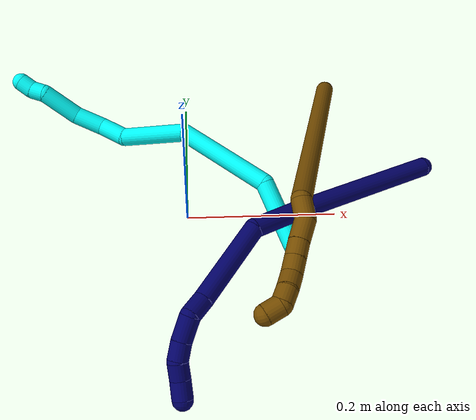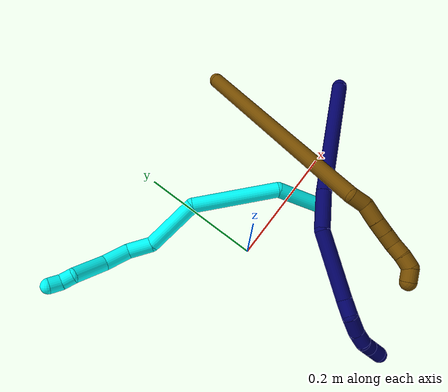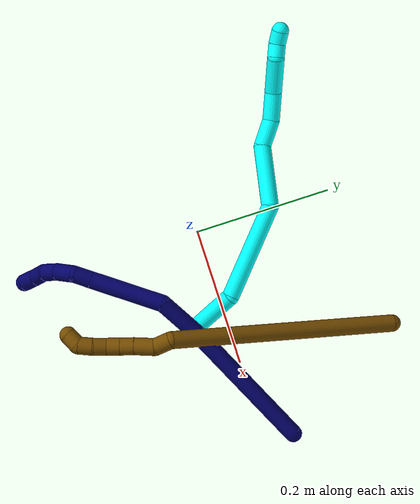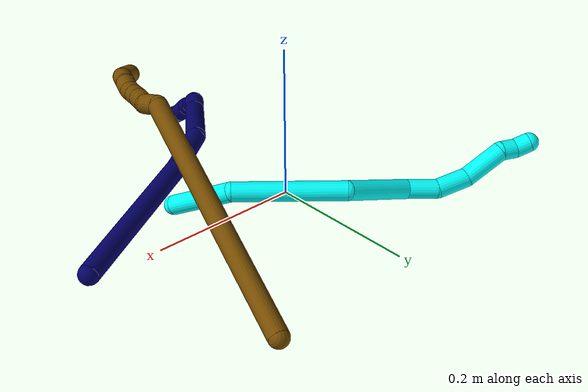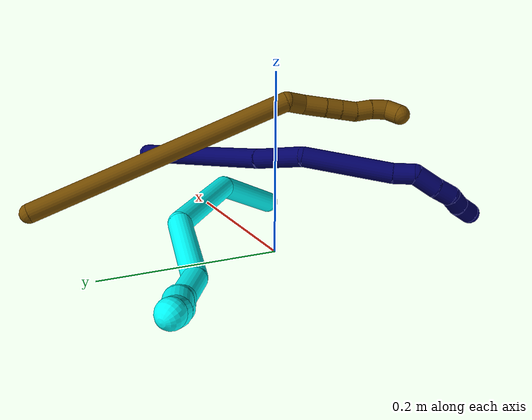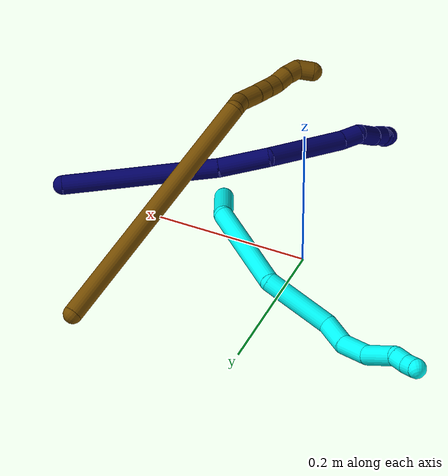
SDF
<sdf version="1.7">
 <world name="default">
  <model name="3">
   <static>0</static>
   <link name="3">
    <collision name="collision-cylinder-e_1_1_4">
     <pose>-0.023869 0.014886 0.035081 -0.401315 -0.559553 0.116743</pose>
     <geometry><cylinder><radius>0.0125</radius><length>0.089933</length></cylinder></geometry>
     <surface>
      <friction><ode><mu>1.16</mu><mu2>1.16</mu2><slip1>0</slip1><slip2>0</slip2></ode></friction>
      <contact><ode><kp>1e+06</kp><kd>1</kd><max_vel>0</max_vel><min_depth>0.001</min_depth></ode></contact>
     </surface>
    </collision>
    <visual name="visual-cylinder-e_1_1_4">
     <pose>-0.023869 0.014886 0.035081 -0.401315 -0.559553 0.116743</pose>
     <geometry><cylinder><radius>0.0125</radius><length>0.089933</length></cylinder></geometry>
     <material><ambient>0.003922 1 0.996078 1</ambient></material>
    </visual>
    <collision name="collision-cylinder-e_2_4_5">
     <pose>-0.045337 0.051651 0.137304 -0.314996 0.033983 -0.005397</pose>
     <geometry><cylinder><radius>0.0125</radius><length>0.141315</length></cylinder></geometry>
     <surface>
      <friction><ode><mu>1.16</mu><mu2>1.16</mu2><slip1>0</slip1><slip2>0</slip2></ode></friction>
      <contact><ode><kp>1e+06</kp><kd>1</kd><max_vel>0</max_vel><min_depth>0.001</min_depth></ode></contact>
     </surface>
    </collision>
    <visual name="visual-cylinder-e_2_4_5">
     <pose>-0.045337 0.051651 0.137304 -0.314996 0.033983 -0.005397</pose>
     <geometry><cylinder><radius>0.0125</radius><length>0.141315</length></cylinder></geometry>
     <material><ambient>0.003922 1 0.996078 1</ambient></material>
    </visual>
    <collision name="collision-cylinder-e_3_5_6">
     <pose>-0.01648 0.090036 0.238063 -0.456447 0.615018 -0.147264</pose>
     <geometry><cylinder><radius>0.0125</radius><length>0.091706</length></cylinder></geometry>
     <surface>
      <friction><ode><mu>1.16</mu><mu2>1.16</mu2><slip1>0</slip1><slip2>0</slip2></ode></friction>
      <contact><ode><kp>1e+06</kp><kd>1</kd><max_vel>0</max_vel><min_depth>0.001</min_depth></ode></contact>
     </surface>
    </collision>
    <visual name="visual-cylinder-e_3_5_6">
     <pose>-0.01648 0.090036 0.238063 -0.456447 0.615018 -0.147264</pose>
     <geometry><cylinder><radius>0.0125</radius><length>0.091706</length></cylinder></geometry>
     <material><ambient>0.003922 1 0.996078 1</ambient></material>
    </visual>
    <collision name="collision-cylinder-e_4_6_7">
     <pose>0.012734 0.112885 0.290425 -0.326285 0.13847 -0.022828</pose>
     <geometry><cylinder><radius>0.0125</radius><length>0.039959</length></cylinder></geometry>
     <surface>
      <friction><ode><mu>1.16</mu><mu2>1.16</mu2><slip1>0</slip1><slip2>0</slip2></ode></friction>
      <contact><ode><kp>1e+06</kp><kd>1</kd><max_vel>0</max_vel><min_depth>0.001</min_depth></ode></contact>
     </surface>
    </collision>
    <visual name="visual-cylinder-e_4_6_7">
     <pose>0.012734 0.112885 0.290425 -0.326285 0.13847 -0.022828</pose>
     <geometry><cylinder><radius>0.0125</radius><length>0.039959</length></cylinder></geometry>
     <material><ambient>0.003922 1 0.996078 1</ambient></material>
    </visual>
    <collision name="collision-cylinder-e_5_7_8">
     <pose>0.018486 0.132598 0.32508 -0.698813 0.143116 -0.052223</pose>
     <geometry><cylinder><radius>0.0125</radius><length>0.041994</length></cylinder></geometry>
     <surface>
      <friction><ode><mu>1.16</mu><mu2>1.16</mu2><slip1>0</slip1><slip2>0</slip2></ode></friction>
      <contact><ode><kp>1e+06</kp><kd>1</kd><max_vel>0</max_vel><min_depth>0.001</min_depth></ode></contact>
     </surface>
    </collision>
    <visual name="visual-cylinder-e_5_7_8">
     <pose>0.018486 0.132598 0.32508 -0.698813 0.143116 -0.052223</pose>
     <geometry><cylinder><radius>0.0125</radius><length>0.041994</length></cylinder></geometry>
     <material><ambient>0.003922 1 0.996078 1</ambient></material>
    </visual>
    <collision name="collision-cylinder-e_6_8_9">
     <pose>0.018813 0.168143 0.357046 -0.944161 -0.097126 0.04962</pose>
     <geometry><cylinder><radius>0.0125</radius><length>0.055015</length></cylinder></geometry>
     <surface>
      <friction><ode><mu>1.16</mu><mu2>1.16</mu2><slip1>0</slip1><slip2>0</slip2></ode></friction>
      <contact><ode><kp>1e+06</kp><kd>1</kd><max_vel>0</max_vel><min_depth>0.001</min_depth></ode></contact>
     </surface>
    </collision>
    <visual name="visual-cylinder-e_6_8_9">
     <pose>0.018813 0.168143 0.357046 -0.944161 -0.097126 0.04962</pose>
     <geometry><cylinder><radius>0.0125</radius><length>0.055015</length></cylinder></geometry>
     <material><ambient>0.003922 1 0.996078 1</ambient></material>
    </visual>
    <collision name="collision-cylinder-e_7_9_10">
     <pose>0.018863 0.195258 0.3814 -0.536832 0.274251 -0.075874</pose>
     <geometry><cylinder><radius>0.0125</radius><length>0.020065</length></cylinder></geometry>
     <surface>
      <friction><ode><mu>1.16</mu><mu2>1.16</mu2><slip1>0</slip1><slip2>0</slip2></ode></friction>
      <contact><ode><kp>1e+06</kp><kd>1</kd><max_vel>0</max_vel><min_depth>0.001</min_depth></ode></contact>
     </surface>
    </collision>
    <visual name="visual-cylinder-e_7_9_10">
     <pose>0.018863 0.195258 0.3814 -0.536832 0.274251 -0.075874</pose>
     <geometry><cylinder><radius>0.0125</radius><length>0.020065</length></cylinder></geometry>
     <material><ambient>0.003922 1 0.996078 1</ambient></material>
    </visual>
    <collision name="collision-cylinder-e_8_10_2">
     <pose>0.020899 0.206592 0.397366 -0.695145 -0.068127 0.024689</pose>
     <geometry><cylinder><radius>0.0125</radius><length>0.020013</length></cylinder></geometry>
     <surface>
      <friction><ode><mu>1.16</mu><mu2>1.16</mu2><slip1>0</slip1><slip2>0</slip2></ode></friction>
      <contact><ode><kp>1e+06</kp><kd>1</kd><max_vel>0</max_vel><min_depth>0.001</min_depth></ode></contact>
     </surface>
    </collision>
    <visual name="visual-cylinder-e_8_10_2">
     <pose>0.020899 0.206592 0.397366 -0.695145 -0.068127 0.024689</pose>
     <geometry><cylinder><radius>0.0125</radius><length>0.020013</length></cylinder></geometry>
     <material><ambient>0.003922 1 0.996078 1</ambient></material>
    </visual>
    <collision name="collision-sphere-2">
     <pose>0.020218 0.212986 0.405033 0 -0 0</pose>
     <geometry><sphere><radius>0.0125</radius></sphere></geometry>
     <surface>
      <friction><ode><mu>1.16</mu><mu2>1.16</mu2><slip1>0</slip1><slip2>0</slip2></ode></friction>
      <contact><ode><kp>1e+06</kp><kd>1</kd><max_vel>0</max_vel><min_depth>0.001</min_depth></ode></contact>
     </surface>
    </collision>
    <visual name="visual-sphere-2">
     <pose>0.020218 0.212986 0.405033 0 -0 0</pose>
     <geometry><sphere><radius>0.0125</radius></sphere></geometry>
     <material><ambient>0.003922 1 0.996078 1</ambient></material>
    </visual>
    <collision name="collision-sphere-10">
     <pose>0.02158 0.200197 0.389699 0 -0 0</pose>
     <geometry><sphere><radius>0.0125</radius></sphere></geometry>
     <surface>
      <friction><ode><mu>1.16</mu><mu2>1.16</mu2><slip1>0</slip1><slip2>0</slip2></ode></friction>
      <contact><ode><kp>1e+06</kp><kd>1</kd><max_vel>0</max_vel><min_depth>0.001</min_depth></ode></contact>
     </surface>
    </collision>
    <visual name="visual-sphere-10">
     <pose>0.02158 0.200197 0.389699 0 -0 0</pose>
     <geometry><sphere><radius>0.0125</radius></sphere></geometry>
     <material><ambient>0.003922 1 0.996078 1</ambient></material>
    </visual>
    <collision name="collision-sphere-9">
     <pose>0.016146 0.190319 0.373101 0 -0 0</pose>
     <geometry><sphere><radius>0.0125</radius></sphere></geometry>
     <surface>
      <friction><ode><mu>1.16</mu><mu2>1.16</mu2><slip1>0</slip1><slip2>0</slip2></ode></friction>
      <contact><ode><kp>1e+06</kp><kd>1</kd><max_vel>0</max_vel><min_depth>0.001</min_depth></ode></contact>
     </surface>
    </collision>
    <visual name="visual-sphere-9">
     <pose>0.016146 0.190319 0.373101 0 -0 0</pose>
     <geometry><sphere><radius>0.0125</radius></sphere></geometry>
     <material><ambient>0.003922 1 0.996078 1</ambient></material>
    </visual>
    <collision name="collision-sphere-4">
     <pose>-0.047737 0.029773 0.070162 0 -0 0</pose>
     <geometry><sphere><radius>0.0125</radius></sphere></geometry>
     <surface>
      <friction><ode><mu>1.16</mu><mu2>1.16</mu2><slip1>0</slip1><slip2>0</slip2></ode></friction>
      <contact><ode><kp>1e+06</kp><kd>1</kd><max_vel>0</max_vel><min_depth>0.001</min_depth></ode></contact>
     </surface>
    </collision>
    <visual name="visual-sphere-4">
     <pose>-0.047737 0.029773 0.070162 0 -0 0</pose>
     <geometry><sphere><radius>0.0125</radius></sphere></geometry>
     <material><ambient>0.003922 1 0.996078 1</ambient></material>
    </visual>
    <collision name="collision-sphere-1">
     <geometry><sphere><radius>0.0125</radius></sphere></geometry>
     <surface>
      <friction><ode><mu>1.16</mu><mu2>1.16</mu2><slip1>0</slip1><slip2>0</slip2></ode></friction>
      <contact><ode><kp>1e+06</kp><kd>1</kd><max_vel>0</max_vel><min_depth>0.001</min_depth></ode></contact>
     </surface>
    </collision>
    <visual name="visual-sphere-1">
     <geometry><sphere><radius>0.0125</radius></sphere></geometry>
     <material><ambient>0.003922 1 0.996078 1</ambient></material>
    </visual>
    <collision name="collision-sphere-8">
     <pose>0.021481 0.145967 0.340991 0 -0 0</pose>
     <geometry><sphere><radius>0.0125</radius></sphere></geometry>
     <surface>
      <friction><ode><mu>1.16</mu><mu2>1.16</mu2><slip1>0</slip1><slip2>0</slip2></ode></friction>
      <contact><ode><kp>1e+06</kp><kd>1</kd><max_vel>0</max_vel><min_depth>0.001</min_depth></ode></contact>
     </surface>
    </collision>
    <visual name="visual-sphere-8">
     <pose>0.021481 0.145967 0.340991 0 -0 0</pose>
     <geometry><sphere><radius>0.0125</radius></sphere></geometry>
     <material><ambient>0.003922 1 0.996078 1</ambient></material>
    </visual>
    <collision name="collision-sphere-5">
     <pose>-0.042936 0.073529 0.204447 0 -0 0</pose>
     <geometry><sphere><radius>0.0125</radius></sphere></geometry>
     <surface>
      <friction><ode><mu>1.16</mu><mu2>1.16</mu2><slip1>0</slip1><slip2>0</slip2></ode></friction>
      <contact><ode><kp>1e+06</kp><kd>1</kd><max_vel>0</max_vel><min_depth>0.001</min_depth></ode></contact>
     </surface>
    </collision>
    <visual name="visual-sphere-5">
     <pose>-0.042936 0.073529 0.204447 0 -0 0</pose>
     <geometry><sphere><radius>0.0125</radius></sphere></geometry>
     <material><ambient>0.003922 1 0.996078 1</ambient></material>
    </visual>
    <collision name="collision-sphere-6">
     <pose>0.009976 0.106543 0.27168 0 -0 0</pose>
     <geometry><sphere><radius>0.0125</radius></sphere></geometry>
     <surface>
      <friction><ode><mu>1.16</mu><mu2>1.16</mu2><slip1>0</slip1><slip2>0</slip2></ode></friction>
      <contact><ode><kp>1e+06</kp><kd>1</kd><max_vel>0</max_vel><min_depth>0.001</min_depth></ode></contact>
     </surface>
    </collision>
    <visual name="visual-sphere-6">
     <pose>0.009976 0.106543 0.27168 0 -0 0</pose>
     <geometry><sphere><radius>0.0125</radius></sphere></geometry>
     <material><ambient>0.003922 1 0.996078 1</ambient></material>
    </visual>
    <collision name="collision-sphere-7">
     <pose>0.015491 0.119228 0.309169 0 -0 0</pose>
     <geometry><sphere><radius>0.0125</radius></sphere></geometry>
     <surface>
      <friction><ode><mu>1.16</mu><mu2>1.16</mu2><slip1>0</slip1><slip2>0</slip2></ode></friction>
      <contact><ode><kp>1e+06</kp><kd>1</kd><max_vel>0</max_vel><min_depth>0.001</min_depth></ode></contact>
     </surface>
    </collision>
    <visual name="visual-sphere-7">
     <pose>0.015491 0.119228 0.309169 0 -0 0</pose>
     <geometry><sphere><radius>0.0125</radius></sphere></geometry>
     <material><ambient>0.003922 1 0.996078 1</ambient></material>
    </visual>
    <inertial>
     <pose>-0.013896 0.088553 0.209789 0 -0 0</pose>
     <mass>0.5</mass>
     <inertia>
      <ixx>0.000381</ixx>
      <ixy>0</ixy>
      <ixz>0</ixz>
      <iyy>0.00039</iyy>
      <iyz>0</iyz>
      <izz>-0.000124</izz>
     </inertia>
    </inertial>
   </link>
   <pose>0.13642 -0.057565 0.011882 1.85374 0.71725 -2.34433</pose>
  </model>
  <model name="7">
   <static>0</static>
   <link name="7">
    <collision name="collision-cylinder-e_1_1_4">
     <pose>-0.083551 -0.04291 0.037313 0.855053 -0.973218 -0.473069</pose>
     <geometry><cylinder><radius>0.0125</radius><length>0.202132</length></cylinder></geometry>
     <surface>
      <friction><ode><mu>1.16</mu><mu2>1.16</mu2><slip1>0</slip1><slip2>0</slip2></ode></friction>
      <contact><ode><kp>1e+06</kp><kd>1</kd><max_vel>0</max_vel><min_depth>0.001</min_depth></ode></contact>
     </surface>
    </collision>
    <visual name="visual-cylinder-e_1_1_4">
     <pose>-0.083551 -0.04291 0.037313 0.855053 -0.973218 -0.473069</pose>
     <geometry><cylinder><radius>0.0125</radius><length>0.202132</length></cylinder></geometry>
     <material><ambient>0.003922 0 0.403922 1</ambient></material>
    </visual>
    <collision name="collision-cylinder-e_2_4_5">
     <pose>-0.195072 -0.096852 0.088223 0.681658 -1.01145 -0.387866</pose>
     <geometry><cylinder><radius>0.0125</radius><length>0.065996</length></cylinder></geometry>
     <surface>
      <friction><ode><mu>1.16</mu><mu2>1.16</mu2><slip1>0</slip1><slip2>0</slip2></ode></friction>
      <contact><ode><kp>1e+06</kp><kd>1</kd><max_vel>0</max_vel><min_depth>0.001</min_depth></ode></contact>
     </surface>
    </collision>
    <visual name="visual-cylinder-e_2_4_5">
     <pose>-0.195072 -0.096852 0.088223 0.681658 -1.01145 -0.387866</pose>
     <geometry><cylinder><radius>0.0125</radius><length>0.065996</length></cylinder></geometry>
     <material><ambient>0.003922 0 0.403922 1</ambient></material>
    </visual>
    <collision name="collision-cylinder-e_3_5_6">
     <pose>-0.251481 -0.123277 0.14569 0.337428 -0.548995 -0.09586</pose>
     <geometry><cylinder><radius>0.0125</radius><length>0.109004</length></cylinder></geometry>
     <surface>
      <friction><ode><mu>1.16</mu><mu2>1.16</mu2><slip1>0</slip1><slip2>0</slip2></ode></friction>
      <contact><ode><kp>1e+06</kp><kd>1</kd><max_vel>0</max_vel><min_depth>0.001</min_depth></ode></contact>
     </surface>
    </collision>
    <visual name="visual-cylinder-e_3_5_6">
     <pose>-0.251481 -0.123277 0.14569 0.337428 -0.548995 -0.09586</pose>
     <geometry><cylinder><radius>0.0125</radius><length>0.109004</length></cylinder></geometry>
     <material><ambient>0.003922 0 0.403922 1</ambient></material>
    </visual>
    <collision name="collision-cylinder-e_4_6_7">
     <pose>-0.288135 -0.141063 0.199242 0.242493 -0.68896 -0.087376</pose>
     <geometry><cylinder><radius>0.0125</radius><length>0.025838</length></cylinder></geometry>
     <surface>
      <friction><ode><mu>1.16</mu><mu2>1.16</mu2><slip1>0</slip1><slip2>0</slip2></ode></friction>
      <contact><ode><kp>1e+06</kp><kd>1</kd><max_vel>0</max_vel><min_depth>0.001</min_depth></ode></contact>
     </surface>
    </collision>
    <visual name="visual-cylinder-e_4_6_7">
     <pose>-0.288135 -0.141063 0.199242 0.242493 -0.68896 -0.087376</pose>
     <geometry><cylinder><radius>0.0125</radius><length>0.025838</length></cylinder></geometry>
     <material><ambient>0.003922 0 0.403922 1</ambient></material>
    </visual>
    <collision name="collision-cylinder-e_5_7_8">
     <pose>-0.297434 -0.149685 0.222822 0.421214 -0.07117 -0.015221</pose>
     <geometry><cylinder><radius>0.0125</radius><length>0.030539</length></cylinder></geometry>
     <surface>
      <friction><ode><mu>1.16</mu><mu2>1.16</mu2><slip1>0</slip1><slip2>0</slip2></ode></friction>
      <contact><ode><kp>1e+06</kp><kd>1</kd><max_vel>0</max_vel><min_depth>0.001</min_depth></ode></contact>
     </surface>
    </collision>
    <visual name="visual-cylinder-e_5_7_8">
     <pose>-0.297434 -0.149685 0.222822 0.421214 -0.07117 -0.015221</pose>
     <geometry><cylinder><radius>0.0125</radius><length>0.030539</length></cylinder></geometry>
     <material><ambient>0.003922 0 0.403922 1</ambient></material>
    </visual>
    <collision name="collision-cylinder-e_6_8_9">
     <pose>-0.298914 -0.158813 0.247536 0.262046 -0.035165 -0.004634</pose>
     <geometry><cylinder><radius>0.0125</radius><length>0.022406</length></cylinder></geometry>
     <surface>
      <friction><ode><mu>1.16</mu><mu2>1.16</mu2><slip1>0</slip1><slip2>0</slip2></ode></friction>
      <contact><ode><kp>1e+06</kp><kd>1</kd><max_vel>0</max_vel><min_depth>0.001</min_depth></ode></contact>
     </surface>
    </collision>
    <visual name="visual-cylinder-e_6_8_9">
     <pose>-0.298914 -0.158813 0.247536 0.262046 -0.035165 -0.004634</pose>
     <geometry><cylinder><radius>0.0125</radius><length>0.022406</length></cylinder></geometry>
     <material><ambient>0.003922 0 0.403922 1</ambient></material>
    </visual>
    <collision name="collision-cylinder-e_7_9_10">
     <pose>-0.295405 -0.163795 0.267913 0.214342 0.379425 0.041311</pose>
     <geometry><cylinder><radius>0.0125</radius><length>0.021075</length></cylinder></geometry>
     <surface>
      <friction><ode><mu>1.16</mu><mu2>1.16</mu2><slip1>0</slip1><slip2>0</slip2></ode></friction>
      <contact><ode><kp>1e+06</kp><kd>1</kd><max_vel>0</max_vel><min_depth>0.001</min_depth></ode></contact>
     </surface>
    </collision>
    <visual name="visual-cylinder-e_7_9_10">
     <pose>-0.295405 -0.163795 0.267913 0.214342 0.379425 0.041311</pose>
     <geometry><cylinder><radius>0.0125</radius><length>0.021075</length></cylinder></geometry>
     <material><ambient>0.003922 0 0.403922 1</ambient></material>
    </visual>
    <collision name="collision-cylinder-e_8_10_2">
     <pose>-0.288933 -0.166693 0.288663 0.072824 0.22514 0.008236</pose>
     <geometry><cylinder><radius>0.0125</radius><length>0.023011</length></cylinder></geometry>
     <surface>
      <friction><ode><mu>1.16</mu><mu2>1.16</mu2><slip1>0</slip1><slip2>0</slip2></ode></friction>
      <contact><ode><kp>1e+06</kp><kd>1</kd><max_vel>0</max_vel><min_depth>0.001</min_depth></ode></contact>
     </surface>
    </collision>
    <visual name="visual-cylinder-e_8_10_2">
     <pose>-0.288933 -0.166693 0.288663 0.072824 0.22514 0.008236</pose>
     <geometry><cylinder><radius>0.0125</radius><length>0.023011</length></cylinder></geometry>
     <material><ambient>0.003922 0 0.403922 1</ambient></material>
    </visual>
    <collision name="collision-sphere-2">
     <pose>-0.286365 -0.167509 0.299848 0 -0 0</pose>
     <geometry><sphere><radius>0.0125</radius></sphere></geometry>
     <surface>
      <friction><ode><mu>1.16</mu><mu2>1.16</mu2><slip1>0</slip1><slip2>0</slip2></ode></friction>
      <contact><ode><kp>1e+06</kp><kd>1</kd><max_vel>0</max_vel><min_depth>0.001</min_depth></ode></contact>
     </surface>
    </collision>
    <visual name="visual-sphere-2">
     <pose>-0.286365 -0.167509 0.299848 0 -0 0</pose>
     <geometry><sphere><radius>0.0125</radius></sphere></geometry>
     <material><ambient>0.003922 0 0.403922 1</ambient></material>
    </visual>
    <collision name="collision-sphere-10">
     <pose>-0.291502 -0.165877 0.277477 0 -0 0</pose>
     <geometry><sphere><radius>0.0125</radius></sphere></geometry>
     <surface>
      <friction><ode><mu>1.16</mu><mu2>1.16</mu2><slip1>0</slip1><slip2>0</slip2></ode></friction>
      <contact><ode><kp>1e+06</kp><kd>1</kd><max_vel>0</max_vel><min_depth>0.001</min_depth></ode></contact>
     </surface>
    </collision>
    <visual name="visual-sphere-10">
     <pose>-0.291502 -0.165877 0.277477 0 -0 0</pose>
     <geometry><sphere><radius>0.0125</radius></sphere></geometry>
     <material><ambient>0.003922 0 0.403922 1</ambient></material>
    </visual>
    <collision name="collision-sphere-9">
     <pose>-0.299308 -0.161714 0.258349 0 -0 0</pose>
     <geometry><sphere><radius>0.0125</radius></sphere></geometry>
     <surface>
      <friction><ode><mu>1.16</mu><mu2>1.16</mu2><slip1>0</slip1><slip2>0</slip2></ode></friction>
      <contact><ode><kp>1e+06</kp><kd>1</kd><max_vel>0</max_vel><min_depth>0.001</min_depth></ode></contact>
     </surface>
    </collision>
    <visual name="visual-sphere-9">
     <pose>-0.299308 -0.161714 0.258349 0 -0 0</pose>
     <geometry><sphere><radius>0.0125</radius></sphere></geometry>
     <material><ambient>0.003922 0 0.403922 1</ambient></material>
    </visual>
    <collision name="collision-sphere-4">
     <pose>-0.167103 -0.08582 0.074626 0 -0 0</pose>
     <geometry><sphere><radius>0.0125</radius></sphere></geometry>
     <surface>
      <friction><ode><mu>1.16</mu><mu2>1.16</mu2><slip1>0</slip1><slip2>0</slip2></ode></friction>
      <contact><ode><kp>1e+06</kp><kd>1</kd><max_vel>0</max_vel><min_depth>0.001</min_depth></ode></contact>
     </surface>
    </collision>
    <visual name="visual-sphere-4">
     <pose>-0.167103 -0.08582 0.074626 0 -0 0</pose>
     <geometry><sphere><radius>0.0125</radius></sphere></geometry>
     <material><ambient>0.003922 0 0.403922 1</ambient></material>
    </visual>
    <collision name="collision-sphere-1">
     <geometry><sphere><radius>0.0125</radius></sphere></geometry>
     <surface>
      <friction><ode><mu>1.16</mu><mu2>1.16</mu2><slip1>0</slip1><slip2>0</slip2></ode></friction>
      <contact><ode><kp>1e+06</kp><kd>1</kd><max_vel>0</max_vel><min_depth>0.001</min_depth></ode></contact>
     </surface>
    </collision>
    <visual name="visual-sphere-1">
     <geometry><sphere><radius>0.0125</radius></sphere></geometry>
     <material><ambient>0.003922 0 0.403922 1</ambient></material>
    </visual>
    <collision name="collision-sphere-8">
     <pose>-0.29852 -0.155913 0.236722 0 -0 0</pose>
     <geometry><sphere><radius>0.0125</radius></sphere></geometry>
     <surface>
      <friction><ode><mu>1.16</mu><mu2>1.16</mu2><slip1>0</slip1><slip2>0</slip2></ode></friction>
      <contact><ode><kp>1e+06</kp><kd>1</kd><max_vel>0</max_vel><min_depth>0.001</min_depth></ode></contact>
     </surface>
    </collision>
    <visual name="visual-sphere-8">
     <pose>-0.29852 -0.155913 0.236722 0 -0 0</pose>
     <geometry><sphere><radius>0.0125</radius></sphere></geometry>
     <material><ambient>0.003922 0 0.403922 1</ambient></material>
    </visual>
    <collision name="collision-sphere-5">
     <pose>-0.223041 -0.107885 0.101819 0 -0 0</pose>
     <geometry><sphere><radius>0.0125</radius></sphere></geometry>
     <surface>
      <friction><ode><mu>1.16</mu><mu2>1.16</mu2><slip1>0</slip1><slip2>0</slip2></ode></friction>
      <contact><ode><kp>1e+06</kp><kd>1</kd><max_vel>0</max_vel><min_depth>0.001</min_depth></ode></contact>
     </surface>
    </collision>
    <visual name="visual-sphere-5">
     <pose>-0.223041 -0.107885 0.101819 0 -0 0</pose>
     <geometry><sphere><radius>0.0125</radius></sphere></geometry>
     <material><ambient>0.003922 0 0.403922 1</ambient></material>
    </visual>
    <collision name="collision-sphere-6">
     <pose>-0.279922 -0.138669 0.189562 0 -0 0</pose>
     <geometry><sphere><radius>0.0125</radius></sphere></geometry>
     <surface>
      <friction><ode><mu>1.16</mu><mu2>1.16</mu2><slip1>0</slip1><slip2>0</slip2></ode></friction>
      <contact><ode><kp>1e+06</kp><kd>1</kd><max_vel>0</max_vel><min_depth>0.001</min_depth></ode></contact>
     </surface>
    </collision>
    <visual name="visual-sphere-6">
     <pose>-0.279922 -0.138669 0.189562 0 -0 0</pose>
     <geometry><sphere><radius>0.0125</radius></sphere></geometry>
     <material><ambient>0.003922 0 0.403922 1</ambient></material>
    </visual>
    <collision name="collision-sphere-7">
     <pose>-0.296348 -0.143458 0.208923 0 -0 0</pose>
     <geometry><sphere><radius>0.0125</radius></sphere></geometry>
     <surface>
      <friction><ode><mu>1.16</mu><mu2>1.16</mu2><slip1>0</slip1><slip2>0</slip2></ode></friction>
      <contact><ode><kp>1e+06</kp><kd>1</kd><max_vel>0</max_vel><min_depth>0.001</min_depth></ode></contact>
     </surface>
    </collision>
    <visual name="visual-sphere-7">
     <pose>-0.296348 -0.143458 0.208923 0 -0 0</pose>
     <geometry><sphere><radius>0.0125</radius></sphere></geometry>
     <material><ambient>0.003922 0 0.403922 1</ambient></material>
    </visual>
    <inertial>
     <pose>-0.186549 -0.09513 0.118066 0 -0 0</pose>
     <mass>0.5</mass>
     <inertia>
      <ixx>0.000252</ixx>
      <ixy>0</ixy>
      <ixz>0</ixz>
      <iyy>0.000541</iyy>
      <iyz>0</iyz>
      <izz>0.00102</izz>
     </inertia>
    </inertial>
   </link>
   <pose>0.31879 0.041821 0.045336 2.06633 0.709163 0.324047</pose>
  </model>
  <model name="12">
   <static>0</static>
   <link name="12">
    <collision name="collision-cylinder-e_1_1_4">
     <pose>-0.005182 -0.172045 0.010846 1.50784 -0.030054 -0.028219</pose>
     <geometry><cylinder><radius>0.0125</radius><length>0.344929</length></cylinder></geometry>
     <surface>
      <friction><ode><mu>1.16</mu><mu2>1.16</mu2><slip1>0</slip1><slip2>0</slip2></ode></friction>
      <contact><ode><kp>1e+06</kp><kd>1</kd><max_vel>0</max_vel><min_depth>0.001</min_depth></ode></contact>
     </surface>
    </collision>
    <visual name="visual-cylinder-e_1_1_4">
     <pose>-0.005182 -0.172045 0.010846 1.50784 -0.030054 -0.028219</pose>
     <geometry><cylinder><radius>0.0125</radius><length>0.344929</length></cylinder></geometry>
     <material><ambient>0.466667 0.301961 0 1</ambient></material>
    </visual>
    <collision name="collision-cylinder-e_2_4_5">
     <pose>-0.002479 -0.353651 0.022205 1.51725 0.688954 0.655596</pose>
     <geometry><cylinder><radius>0.0125</radius><length>0.024808</length></cylinder></geometry>
     <surface>
      <friction><ode><mu>1.16</mu><mu2>1.16</mu2><slip1>0</slip1><slip2>0</slip2></ode></friction>
      <contact><ode><kp>1e+06</kp><kd>1</kd><max_vel>0</max_vel><min_depth>0.001</min_depth></ode></contact>
     </surface>
    </collision>
    <visual name="visual-cylinder-e_2_4_5">
     <pose>-0.002479 -0.353651 0.022205 1.51725 0.688954 0.655596</pose>
     <geometry><cylinder><radius>0.0125</radius><length>0.024808</length></cylinder></geometry>
     <material><ambient>0.466667 0.301961 0 1</ambient></material>
    </visual>
    <collision name="collision-cylinder-e_3_5_6">
     <pose>0.010622 -0.376241 0.018415 1.88973 0.363258 0.497574</pose>
     <geometry><cylinder><radius>0.0125</radius><length>0.029358</length></cylinder></geometry>
     <surface>
      <friction><ode><mu>1.16</mu><mu2>1.16</mu2><slip1>0</slip1><slip2>0</slip2></ode></friction>
      <contact><ode><kp>1e+06</kp><kd>1</kd><max_vel>0</max_vel><min_depth>0.001</min_depth></ode></contact>
     </surface>
    </collision>
    <visual name="visual-cylinder-e_3_5_6">
     <pose>0.010622 -0.376241 0.018415 1.88973 0.363258 0.497574</pose>
     <geometry><cylinder><radius>0.0125</radius><length>0.029358</length></cylinder></geometry>
     <material><ambient>0.466667 0.301961 0 1</ambient></material>
    </visual>
    <collision name="collision-cylinder-e_4_6_7">
     <pose>0.019791 -0.398131 0.01163 1.84404 0.405774 0.529837</pose>
     <geometry><cylinder><radius>0.0125</radius><length>0.02003</length></cylinder></geometry>
     <surface>
      <friction><ode><mu>1.16</mu><mu2>1.16</mu2><slip1>0</slip1><slip2>0</slip2></ode></friction>
      <contact><ode><kp>1e+06</kp><kd>1</kd><max_vel>0</max_vel><min_depth>0.001</min_depth></ode></contact>
     </surface>
    </collision>
    <visual name="visual-cylinder-e_4_6_7">
     <pose>0.019791 -0.398131 0.01163 1.84404 0.405774 0.529837</pose>
     <geometry><cylinder><radius>0.0125</radius><length>0.02003</length></cylinder></geometry>
     <material><ambient>0.466667 0.301961 0 1</ambient></material>
    </visual>
    <collision name="collision-cylinder-e_5_7_8">
     <pose>0.027764 -0.416007 0.006624 1.84367 0.40554 0.529346</pose>
     <geometry><cylinder><radius>0.0125</radius><length>0.020377</length></cylinder></geometry>
     <surface>
      <friction><ode><mu>1.16</mu><mu2>1.16</mu2><slip1>0</slip1><slip2>0</slip2></ode></friction>
      <contact><ode><kp>1e+06</kp><kd>1</kd><max_vel>0</max_vel><min_depth>0.001</min_depth></ode></contact>
     </surface>
    </collision>
    <visual name="visual-cylinder-e_5_7_8">
     <pose>0.027764 -0.416007 0.006624 1.84367 0.40554 0.529346</pose>
     <geometry><cylinder><radius>0.0125</radius><length>0.020377</length></cylinder></geometry>
     <material><ambient>0.466667 0.301961 0 1</ambient></material>
    </visual>
    <collision name="collision-cylinder-e_6_8_9">
     <pose>0.033179 -0.434969 0.002821 1.69875 0.138303 0.157163</pose>
     <geometry><cylinder><radius>0.0125</radius><length>0.020252</length></cylinder></geometry>
     <surface>
      <friction><ode><mu>1.16</mu><mu2>1.16</mu2><slip1>0</slip1><slip2>0</slip2></ode></friction>
      <contact><ode><kp>1e+06</kp><kd>1</kd><max_vel>0</max_vel><min_depth>0.001</min_depth></ode></contact>
     </surface>
    </collision>
    <visual name="visual-cylinder-e_6_8_9">
     <pose>0.033179 -0.434969 0.002821 1.69875 0.138303 0.157163</pose>
     <geometry><cylinder><radius>0.0125</radius><length>0.020252</length></cylinder></geometry>
     <material><ambient>0.466667 0.301961 0 1</ambient></material>
    </visual>
    <collision name="collision-cylinder-e_7_9_10">
     <pose>0.036855 -0.454344 -0.001217 1.85536 0.22806 0.303305</pose>
     <geometry><cylinder><radius>0.0125</radius><length>0.020168</length></cylinder></geometry>
     <surface>
      <friction><ode><mu>1.16</mu><mu2>1.16</mu2><slip1>0</slip1><slip2>0</slip2></ode></friction>
      <contact><ode><kp>1e+06</kp><kd>1</kd><max_vel>0</max_vel><min_depth>0.001</min_depth></ode></contact>
     </surface>
    </collision>
    <visual name="visual-cylinder-e_7_9_10">
     <pose>0.036855 -0.454344 -0.001217 1.85536 0.22806 0.303305</pose>
     <geometry><cylinder><radius>0.0125</radius><length>0.020168</length></cylinder></geometry>
     <material><ambient>0.466667 0.301961 0 1</ambient></material>
    </visual>
    <collision name="collision-cylinder-e_8_10_2">
     <pose>0.038709 -0.469453 -0.012241 2.53944 -0.042454 -0.13653</pose>
     <geometry><cylinder><radius>0.0125</radius><length>0.020079</length></cylinder></geometry>
     <surface>
      <friction><ode><mu>1.16</mu><mu2>1.16</mu2><slip1>0</slip1><slip2>0</slip2></ode></friction>
      <contact><ode><kp>1e+06</kp><kd>1</kd><max_vel>0</max_vel><min_depth>0.001</min_depth></ode></contact>
     </surface>
    </collision>
    <visual name="visual-cylinder-e_8_10_2">
     <pose>0.038709 -0.469453 -0.012241 2.53944 -0.042454 -0.13653</pose>
     <geometry><cylinder><radius>0.0125</radius><length>0.020079</length></cylinder></geometry>
     <material><ambient>0.466667 0.301961 0 1</ambient></material>
    </visual>
    <collision name="collision-sphere-2">
     <pose>0.038283 -0.475135 -0.020507 0 -0 0</pose>
     <geometry><sphere><radius>0.0125</radius></sphere></geometry>
     <surface>
      <friction><ode><mu>1.16</mu><mu2>1.16</mu2><slip1>0</slip1><slip2>0</slip2></ode></friction>
      <contact><ode><kp>1e+06</kp><kd>1</kd><max_vel>0</max_vel><min_depth>0.001</min_depth></ode></contact>
     </surface>
    </collision>
    <visual name="visual-sphere-2">
     <pose>0.038283 -0.475135 -0.020507 0 -0 0</pose>
     <geometry><sphere><radius>0.0125</radius></sphere></geometry>
     <material><ambient>0.466667 0.301961 0 1</ambient></material>
    </visual>
    <collision name="collision-sphere-10">
     <pose>0.039135 -0.463772 -0.003974 0 -0 0</pose>
     <geometry><sphere><radius>0.0125</radius></sphere></geometry>
     <surface>
      <friction><ode><mu>1.16</mu><mu2>1.16</mu2><slip1>0</slip1><slip2>0</slip2></ode></friction>
      <contact><ode><kp>1e+06</kp><kd>1</kd><max_vel>0</max_vel><min_depth>0.001</min_depth></ode></contact>
     </surface>
    </collision>
    <visual name="visual-sphere-10">
     <pose>0.039135 -0.463772 -0.003974 0 -0 0</pose>
     <geometry><sphere><radius>0.0125</radius></sphere></geometry>
     <material><ambient>0.466667 0.301961 0 1</ambient></material>
    </visual>
    <collision name="collision-sphere-9">
     <pose>0.034575 -0.444917 0.001541 0 -0 0</pose>
     <geometry><sphere><radius>0.0125</radius></sphere></geometry>
     <surface>
      <friction><ode><mu>1.16</mu><mu2>1.16</mu2><slip1>0</slip1><slip2>0</slip2></ode></friction>
      <contact><ode><kp>1e+06</kp><kd>1</kd><max_vel>0</max_vel><min_depth>0.001</min_depth></ode></contact>
     </surface>
    </collision>
    <visual name="visual-sphere-9">
     <pose>0.034575 -0.444917 0.001541 0 -0 0</pose>
     <geometry><sphere><radius>0.0125</radius></sphere></geometry>
     <material><ambient>0.466667 0.301961 0 1</ambient></material>
    </visual>
    <collision name="collision-sphere-4">
     <pose>-0.010365 -0.34409 0.021693 0 -0 0</pose>
     <geometry><sphere><radius>0.0125</radius></sphere></geometry>
     <surface>
      <friction><ode><mu>1.16</mu><mu2>1.16</mu2><slip1>0</slip1><slip2>0</slip2></ode></friction>
      <contact><ode><kp>1e+06</kp><kd>1</kd><max_vel>0</max_vel><min_depth>0.001</min_depth></ode></contact>
     </surface>
    </collision>
    <visual name="visual-sphere-4">
     <pose>-0.010365 -0.34409 0.021693 0 -0 0</pose>
     <geometry><sphere><radius>0.0125</radius></sphere></geometry>
     <material><ambient>0.466667 0.301961 0 1</ambient></material>
    </visual>
    <collision name="collision-sphere-1">
     <geometry><sphere><radius>0.0125</radius></sphere></geometry>
     <surface>
      <friction><ode><mu>1.16</mu><mu2>1.16</mu2><slip1>0</slip1><slip2>0</slip2></ode></friction>
      <contact><ode><kp>1e+06</kp><kd>1</kd><max_vel>0</max_vel><min_depth>0.001</min_depth></ode></contact>
     </surface>
    </collision>
    <visual name="visual-sphere-1">
     <geometry><sphere><radius>0.0125</radius></sphere></geometry>
     <material><ambient>0.466667 0.301961 0 1</ambient></material>
    </visual>
    <collision name="collision-sphere-8">
     <pose>0.031783 -0.425022 0.004101 0 -0 0</pose>
     <geometry><sphere><radius>0.0125</radius></sphere></geometry>
     <surface>
      <friction><ode><mu>1.16</mu><mu2>1.16</mu2><slip1>0</slip1><slip2>0</slip2></ode></friction>
      <contact><ode><kp>1e+06</kp><kd>1</kd><max_vel>0</max_vel><min_depth>0.001</min_depth></ode></contact>
     </surface>
    </collision>
    <visual name="visual-sphere-8">
     <pose>0.031783 -0.425022 0.004101 0 -0 0</pose>
     <geometry><sphere><radius>0.0125</radius></sphere></geometry>
     <material><ambient>0.466667 0.301961 0 1</ambient></material>
    </visual>
    <collision name="collision-sphere-5">
     <pose>0.005406 -0.363212 0.022717 0 -0 0</pose>
     <geometry><sphere><radius>0.0125</radius></sphere></geometry>
     <surface>
      <friction><ode><mu>1.16</mu><mu2>1.16</mu2><slip1>0</slip1><slip2>0</slip2></ode></friction>
      <contact><ode><kp>1e+06</kp><kd>1</kd><max_vel>0</max_vel><min_depth>0.001</min_depth></ode></contact>
     </surface>
    </collision>
    <visual name="visual-sphere-5">
     <pose>0.005406 -0.363212 0.022717 0 -0 0</pose>
     <geometry><sphere><radius>0.0125</radius></sphere></geometry>
     <material><ambient>0.466667 0.301961 0 1</ambient></material>
    </visual>
    <collision name="collision-sphere-6">
     <pose>0.015838 -0.38927 0.014113 0 -0 0</pose>
     <geometry><sphere><radius>0.0125</radius></sphere></geometry>
     <surface>
      <friction><ode><mu>1.16</mu><mu2>1.16</mu2><slip1>0</slip1><slip2>0</slip2></ode></friction>
      <contact><ode><kp>1e+06</kp><kd>1</kd><max_vel>0</max_vel><min_depth>0.001</min_depth></ode></contact>
     </surface>
    </collision>
    <visual name="visual-sphere-6">
     <pose>0.015838 -0.38927 0.014113 0 -0 0</pose>
     <geometry><sphere><radius>0.0125</radius></sphere></geometry>
     <material><ambient>0.466667 0.301961 0 1</ambient></material>
    </visual>
    <collision name="collision-sphere-7">
     <pose>0.023744 -0.406991 0.009147 0 -0 0</pose>
     <geometry><sphere><radius>0.0125</radius></sphere></geometry>
     <surface>
      <friction><ode><mu>1.16</mu><mu2>1.16</mu2><slip1>0</slip1><slip2>0</slip2></ode></friction>
      <contact><ode><kp>1e+06</kp><kd>1</kd><max_vel>0</max_vel><min_depth>0.001</min_depth></ode></contact>
     </surface>
    </collision>
    <visual name="visual-sphere-7">
     <pose>0.023744 -0.406991 0.009147 0 -0 0</pose>
     <geometry><sphere><radius>0.0125</radius></sphere></geometry>
     <material><ambient>0.466667 0.301961 0 1</ambient></material>
    </visual>
    <inertial>
     <pose>0.003235 -0.246024 0.009975 0 -0 0</pose>
     <mass>0.5</mass>
     <inertia>
      <ixx>0.003352</ixx>
      <ixy>0</ixy>
      <ixz>0</ixz>
      <iyy>8.8e-05</iyy>
      <iyz>0</iyz>
      <izz>0.003533</izz>
     </inertia>
    </inertial>
   </link>
   <pose>0.213436 0.228372 0.012588 -0.551145 0.922111 -0.748545</pose>
  </model>
 </world>
</sdf>
